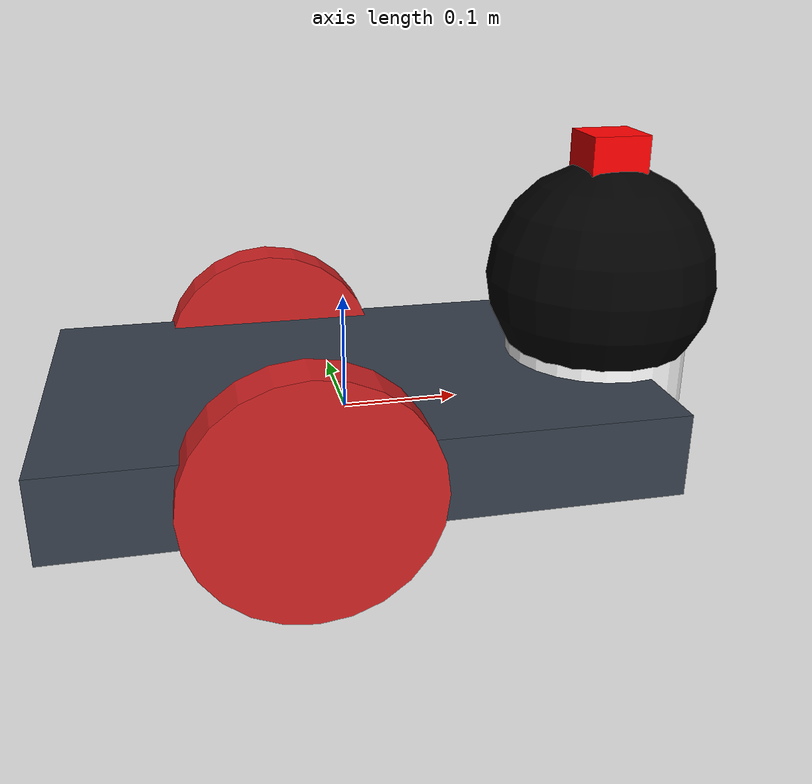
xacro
<?xml version="1.0"?>
<robot xmlns:xacro="http://www.ros.org/wiki/xacro" name="robot_xacro">
<xacro:include filename="$(find simulation)/urdf/robot.gazebo"/>

  <!-- Wheels properties -->
	<xacro:property name="length_wheel" value="0.04" />
	<xacro:property name="radius_wheel" value="0.1" />

  <!-- Inertia -->
	<xacro:macro name="default_inertial" params="mass">
  <inertial>
    <mass value="${mass}" />
    <origin rpy="0 1.5707 1.5707" xyz="0 0 0"/>
    <inertia ixx="0.000526666666667" ixy="0" ixz="0" iyy="0.000526666666667" iyz="0" izz="0.001"/>
  </inertial>
	</xacro:macro>

  <!-- Wheels geometry -->
  <xacro:macro name="wheel_geometry">
    <geometry>
      <cylinder length="${length_wheel}" radius="${radius_wheel}"/>
    </geometry>
  </xacro:macro>

	<!-- Materials -->
  <material name="black">
    <color rgba="0.0 0.0 0.0 1.0"/>
  </material>
  <material name="blue">
    <color rgba="0.203125 0.23828125 0.28515625 1.0"/>
  </material>
  <material name="green">
    <color rgba="0.0 0.8 0.0 1.0"/>
  </material>
  <material name="grey">
    <color rgba="0.2 0.2 0.2 1.0"/>
  </material>
  <material name="orange">
    <color rgba="1.0 0.423529411765 0.0392156862745 1.0"/>
  </material>
  <material name="brown">
    <color rgba="0.870588235294 0.811764705882 0.764705882353 1.0"/>
  </material>
  <material name="red">
    <color rgba="0.80078125 0.12890625 0.1328125 1.0"/>
  </material>
  <material name="white">
    <color rgba="1.0 1.0 1.0 1.0"/>
  </material>

<!-- Chassis link -->
<link name="link_chassis">
  <!-- pose and inertial -->
  <pose>0 0 0.1 0 0 0</pose>
  <inertial>
    <mass value="5"/>
    <origin rpy="0 0 0" xyz="0 0 0.1"/>
    <inertia ixx="0.0395416666667" ixy="0" ixz="0" iyy="0.106208333333" iyz="0" izz="0.106208333333"/>
  </inertial>
  <!-- body -->
  <collision name="collision_chassis">
    <geometry>
      <box size="0.5 0.3 0.07"/>
    </geometry>
  </collision>
  <visual>
    <origin rpy="0 0 0" xyz="0 0 0"/>
    <geometry>
      <box size="0.5 0.3 0.07"/>
    </geometry>
    <material name="blue"/>
  </visual>
  <!-- caster front -->
  <collision name="caster_front_collision">
    <origin rpy=" 0 0 0" xyz="0.35 0 -0.05"/>
    <geometry>
      <sphere radius="0.05"/>
    </geometry>
  </collision>
  <visual name="caster_front_visual">
    <origin rpy=" 0 0 0" xyz="0.2 0 -0.05"/>
    <geometry>
      <sphere radius="0.05"/>
    </geometry>
  </visual>
</link>

<!-- Right wheel link -->
<link name="link_right_wheel">
  <xacro:default_inertial mass="0.2"/>
  <collision name="link_right_wheel_collision">
    <origin rpy="0 1.5707 1.5707" xyz="0 0 0"/>
    <xacro:wheel_geometry />
  </collision>
  <visual name="link_right_wheel_visual">
    <origin rpy="0 1.5707 1.5707" xyz="0 0 0"/>
    <xacro:wheel_geometry />
    <material name="red"/>
  </visual>
</link>

<!-- Left wheel link -->
<link name="link_left_wheel">
  <xacro:default_inertial mass="0.2"/>
  <collision name="link_left_wheel_collision">
    <origin rpy="0 1.5707 1.5707" xyz="0 0 0"/>
    <xacro:wheel_geometry />
  </collision>
  <visual name="link_left_wheel_visual">
    <origin rpy="0 1.5707 1.5707" xyz="0 0 0"/>
    <xacro:wheel_geometry />
    <material name="red"/>
  </visual>
</link>

<!-- Neck link -->
<link name="link_neck">
  <xacro:default_inertial mass="0.2"/>
  <collision name="link_neck_collision">
    <origin xyz="0 0 0.025" rpy="0 0 0"/>
    <geometry>
      <cylinder length="0.06" radius="0.06"/>
    </geometry>
  </collision>
  <visual name="link_neck_visual">
    <origin xyz="0 0 0.025" rpy="0 0 0"/>
    <geometry>
      <cylinder length="0.06" radius="0.08"/>
    </geometry>
    <material name="white"/>
  </visual>
</link>

<!-- Head link -->
<link name="link_head">
  <xacro:default_inertial mass="0.2"/>
  <collision name="link_head_collision">
    <origin xyz="0 0 0.025" rpy="0 0 0"/>
    <geometry>
      <sphere radius="0.1"/>
    </geometry>
  </collision>
  <visual name="link_head_visual">
    <origin xyz="0 0 0.025" rpy="0 0 0"/>
    <geometry>
      <sphere radius="0.1"/>
    </geometry>
    <material name="black"/>
  </visual>
</link>

  <!-- Right wheel joint -->
  <joint name="joint_right_wheel" type="continuous">
    <origin rpy="0 0 0" xyz="-0.05 0.15 0"/>
    <child link="link_right_wheel"/>
    <parent link="link_chassis"/>
    <axis rpy="0 0 0" xyz="0 1 0"/>
    <limit effort="10000" velocity="1000"/>
    <joint_properties damping="1.0" friction="1.0"/>
  </joint>

  <!-- Left wheel joint -->
  <joint name="joint_left_wheel" type="continuous">
    <origin rpy="0 0 0" xyz="-0.05 -0.15 0"/>
    <child link="link_left_wheel"/>
    <parent link="link_chassis"/>
    <axis rpy="0 0 0" xyz="0 1 0"/>
    <limit effort="10000" velocity="1000"/>
    <joint_properties damping="1.0" friction="1.0"/>
  </joint>

  <!-- Neck joint -->
  <joint name="neck_joint" type="fixed">
	    <axis xyz="0 1 0" />
	    <origin xyz="0.23 0 0.0" rpy="0 0 0"/>
	    <parent link="link_chassis"/>
	    <child link="link_neck"/>
	 </joint>

  <!-- Head joint -->
   <joint name="head_joint" type="revolute">
	    <axis xyz="0 0 1" />
	    <origin xyz="0 0 0.08" rpy="0 0 0"/>
      <limit effort="1000.0" lower="-3.14" upper="3.14" velocity="0.2"/>
      <hardwareInterface>EffortJointInterface</hardwareInterface>
	    <parent link="link_neck"/>
	    <child link="link_head"/>
	 </joint>

  <!-- Transmission for head joint (used to control the joint) -->
  <transmission name="head_joint_tran">
    <type>transmission_interface/SimpleTransmission</type>
    <joint name="head_joint">
      <hardwareInterface>EffortJointInterface</hardwareInterface>
    </joint>
    <actuator name="motor1">
      <hardwareInterface>EffortJointInterface</hardwareInterface>
      <mechanicalReduction>1</mechanicalReduction>
    </actuator>
  </transmission>

  <!-- Camera link -->
 <link name="camera_link"> ->
	    <collision>
	      <origin xyz="0 0 0.025" rpy="0 0 0"/>
	      <geometry>
		<box size="0.05 0.05 0.05"/>
	      </geometry>
	    </collision>
	    <visual>
	      <origin xyz="0 0 0.025" rpy="0 0 0"/>
	      <geometry>
		<box size="0.05 0.05 0.05"/>
	      </geometry>
	      <material name="red">
		<color rgba="1 0 0 1"/>
	      </material>
	    </visual>
	    <inertial>
	      <mass value="1e-5" />
	      <origin xyz="0 0 0" rpy="0 0 0"/>
	      <inertia ixx="1e-6" ixy="0" ixz="0" iyy="1e-6" iyz="0" izz="1e-6" />
	    </inertial>
  </link>

  <!-- Camera joint -->
  <joint name="camera_joint" type="fixed">
	    <axis xyz="0 1 0" />
	    <origin xyz="0 0 0.1" rpy="0 0 0"/>
	    <parent link="link_head"/>
	    <child link="camera_link"/>
	 </joint>

</robot>
